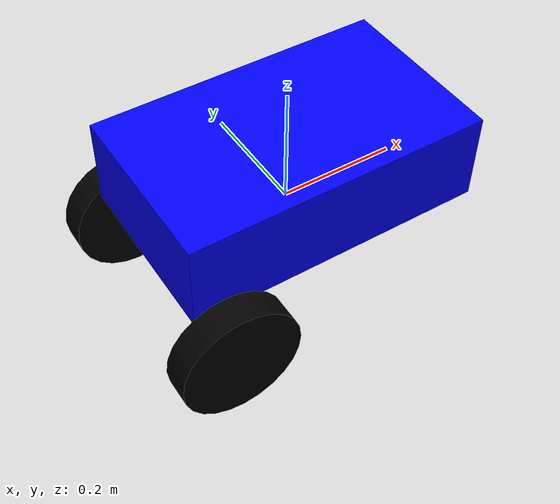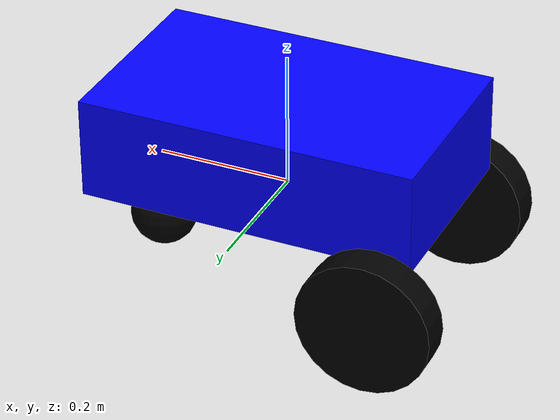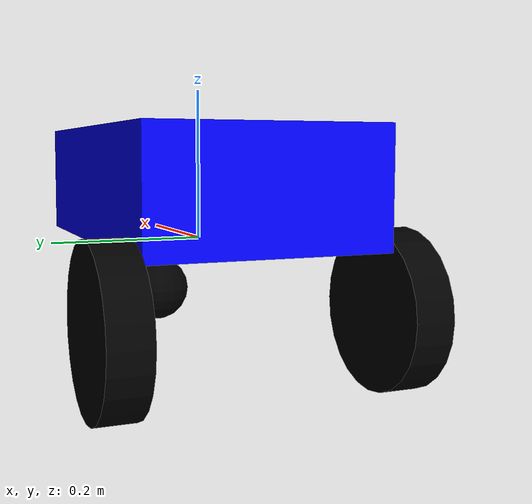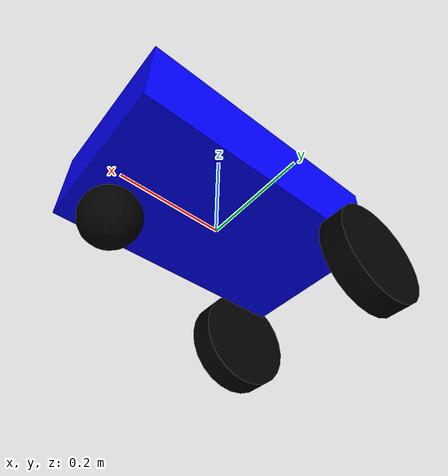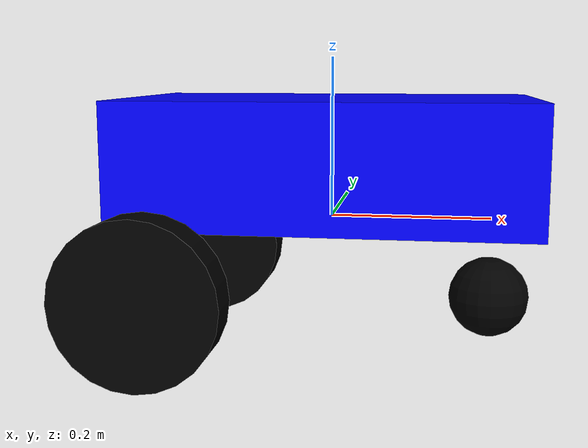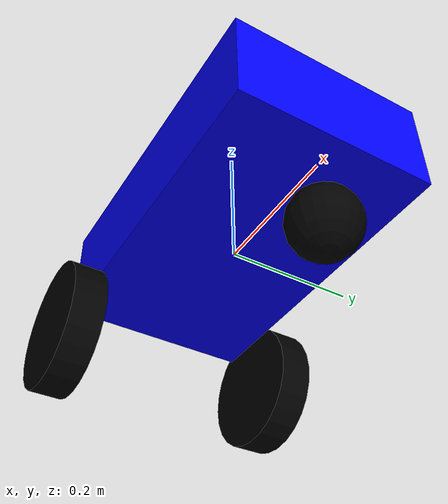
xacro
<?xml version="1.0"?>
<robot name="diffbot" xmlns:xacro="http://ros.org/wiki/xacro">
  <xacro:property name="base_length" value="0.5"/>
  <xacro:property name="base_width" value="0.3"/>
  <xacro:property name="base_height" value="0.15"/>
  <xacro:property name="wheel_radius" value="0.1"/>
  <xacro:property name="wheel_length" value="0.05"/>
  <xacro:property name="wheel_x" value="-0.2"/>
  <xacro:property name="wheel_y_offset" value="0.175"/>
  <xacro:property name="wheel_z" value="-0.075"/>
  <xacro:property name="base_mass" value="5.0"/>
  <xacro:property name="wheel_mass" value="0.5"/>
  <xacro:property name="caster_mass" value="0.1"/>
  <xacro:property name="pi" value="3.141592653589793"/>

  <xacro:macro name="wheel_inertial" params="mass">
    <inertial>
      <mass value="${mass}"/>
      <inertia ixx="0.01" ixy="0" ixz="0" iyy="0.01" iyz="0" izz="0.01"/>
    </inertial>
  </xacro:macro>

  <material name="blue">
    <color rgba="0 0 1 1"/>
  </material>
  <material name="black">
    <color rgba="0 0 0 1"/>
  </material>

  <link name="base_link">
    <visual>
      <origin xyz="0 0 ${base_height/2}" rpy="0 0 0"/>
      <geometry>
        <box size="${base_length} ${base_width} ${base_height}"/>
      </geometry>
      <material name="blue"/>
    </visual>
    <collision>
      <geometry>
        <box size="${base_length} ${base_width} ${base_height}"/>
      </geometry>
    </collision>
    <inertial>
      <origin xyz="0 0 ${base_height/2}"/>
      <mass value="${base_mass}"/>
      <inertia ixx="0.1" ixy="0" ixz="0" iyy="0.1" iyz="0" izz="0.1"/>
    </inertial>
  </link>

  <link name="left_wheel">
    <visual>
      <geometry>
        <cylinder length="${wheel_length}" radius="${wheel_radius}"/>
      </geometry>
      <material name="black"/>
      <origin rpy="${pi/2} 0 0"/>
    </visual>
    <collision>
      <geometry>
        <cylinder length="${wheel_length}" radius="${wheel_radius}"/>
      </geometry>
      <origin rpy="${pi/2} 0 0"/>
    </collision>
    <xacro:wheel_inertial mass="${wheel_mass}"/>
  </link>

  <link name="right_wheel">
    <visual>
      <geometry>
        <cylinder length="${wheel_length}" radius="${wheel_radius}"/>
      </geometry>
      <material name="black"/>
      <origin rpy="${pi/2} 0 0"/>
    </visual>
    <collision>
      <geometry>
        <cylinder length="${wheel_length}" radius="${wheel_radius}"/>
      </geometry>
      <origin rpy="${pi/2} 0 0"/>
    </collision>
    <xacro:wheel_inertial mass="${wheel_mass}"/>
  </link>

  <link name="caster_wheel">
    <visual>
      <geometry>
        <sphere radius="0.05"/>
      </geometry>
      <material name="black"/>
    </visual>
    <collision>
      <geometry>
        <sphere radius="0.05"/>
      </geometry>
    </collision>
    <inertial>
      <mass value="${caster_mass}"/>
      <inertia ixx="0.001" ixy="0" ixz="0" iyy="0.001" iyz="0" izz="0.001"/>
    </inertial>
  </link>

  <joint name="left_wheel_joint" type="continuous">
    <parent link="base_link"/>
    <child link="left_wheel"/>
    <origin xyz="${wheel_x} ${wheel_y_offset} ${wheel_z}" rpy="0 0 0"/>
    <axis xyz="0 1 0"/>
  </joint>

  <joint name="right_wheel_joint" type="continuous">
    <parent link="base_link"/>
    <child link="right_wheel"/>
    <origin xyz="${wheel_x} -${wheel_y_offset} ${wheel_z}" rpy="0 0 0"/>
    <axis xyz="0 1 0"/>
  </joint>

  <joint name="caster_wheel_joint" type="fixed">
    <parent link="base_link"/>
    <child link="caster_wheel"/>
    <origin xyz="${-wheel_x} 0 -0.1" rpy="0 0 0"/>
  </joint>
</robot>
